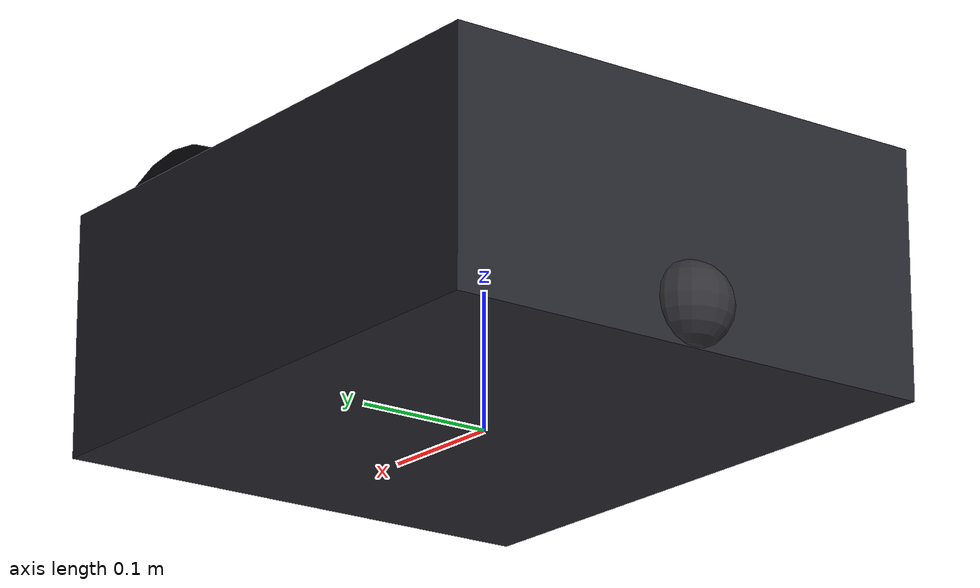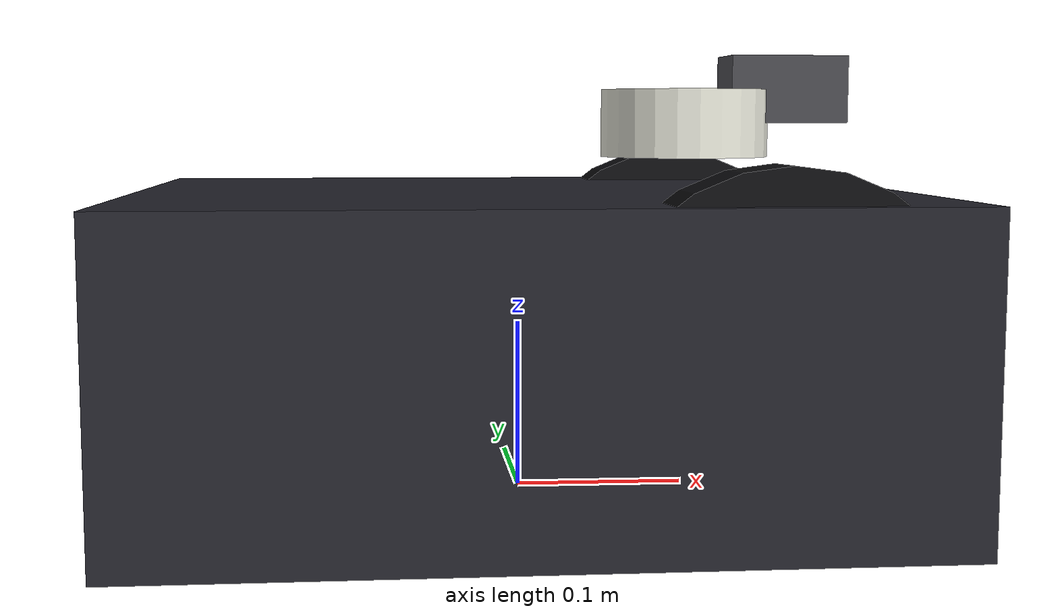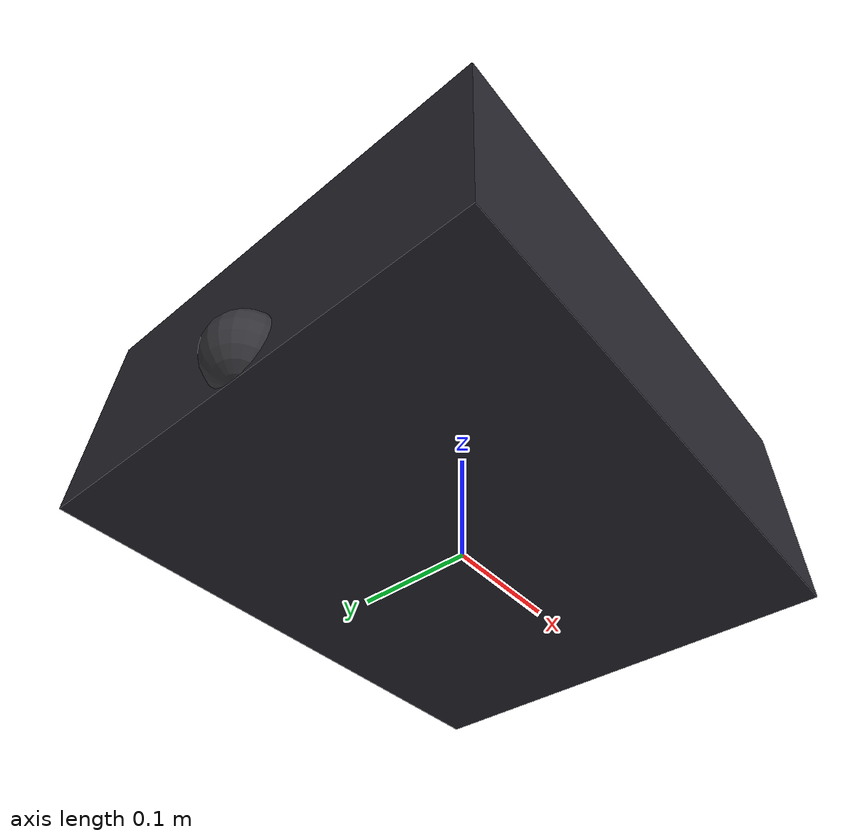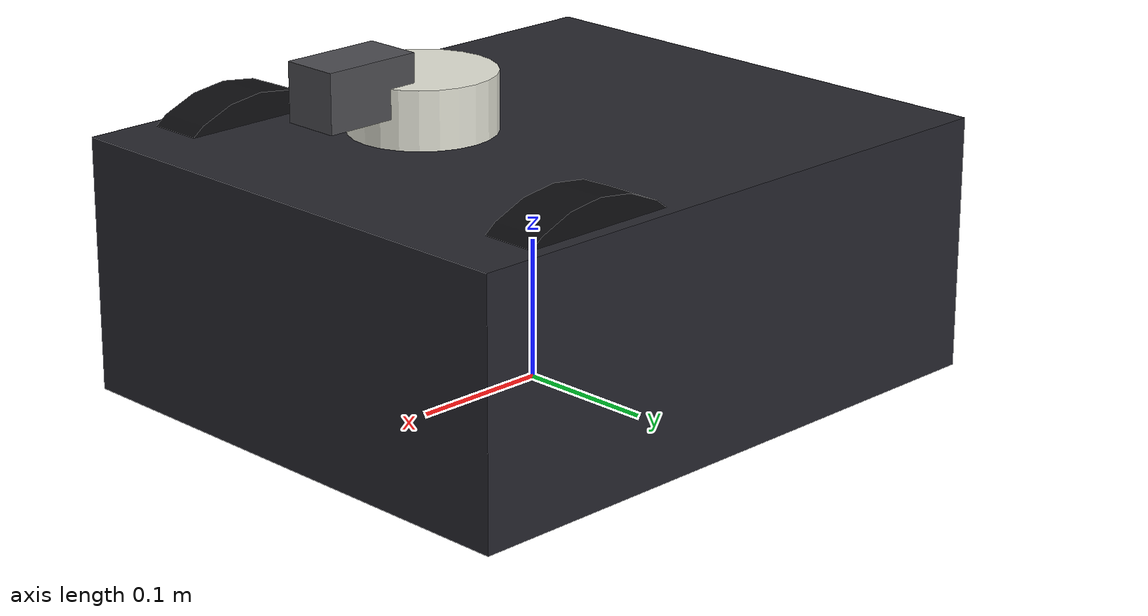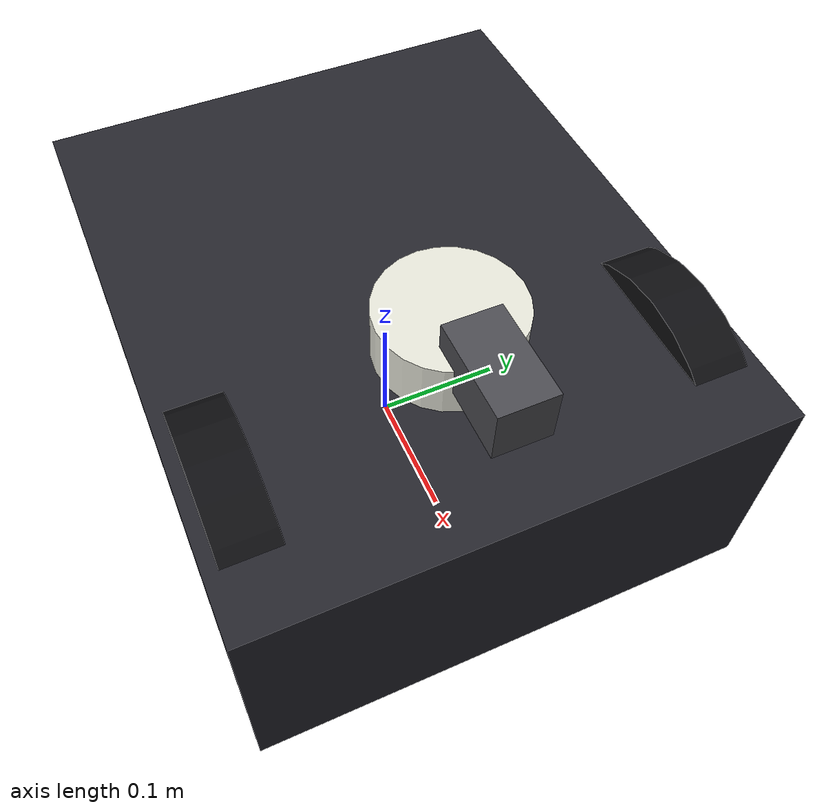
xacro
<?xml version="1.0"?>
<robot xmlns:xacro="http://www.ros.org/wiki/xacro" name="autonomous_robot">

  <xacro:include filename="$(find robot_description)/urdf/properties.xacro" />
  <xacro:include filename="$(find robot_description)/urdf/base.xacro" />
  <xacro:include filename="$(find robot_description)/urdf/sensors.xacro" />
  <xacro:include filename="$(find robot_description)/urdf/gazebo.xacro" />

  <xacro:autonomous_robot />
  <xacro:autonomous_robot_gazebo />

</robot>

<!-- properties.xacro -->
<robot xmlns:xacro="http://www.ros.org/wiki/xacro">

  <xacro:property name="base_length" value="0.45" />
  <xacro:property name="base_width" value="0.38" />
  <xacro:property name="base_height" value="0.18" />
  <xacro:property name="base_mass" value="11.0" />

  <xacro:property name="wheel_radius" value="0.10" />
  <xacro:property name="wheel_width" value="0.04" />
  <xacro:property name="wheel_mass" value="0.6" />
  <xacro:property name="wheel_separation" value="0.32" />

  <xacro:property name="caster_radius" value="0.03" />
  <xacro:property name="caster_mass" value="0.15" />

  <xacro:property name="laser_mass" value="0.35" />
  <xacro:property name="camera_mass" value="0.25" />
  <xacro:property name="imu_mass" value="0.05" />

  <!--
    Sensor mounting heights above the base top surface.
    laser_link z is measured from base_link origin (base top at +base_height/2).
  -->
  <xacro:property name="laser_height" value="0.22" />
  <xacro:property name="camera_height" value="0.24" />
  <xacro:property name="imu_height" value="0.10" />

  <xacro:property name="max_linear_velocity" value="1.2" />
  <xacro:property name="max_angular_velocity" value="1.5" />
  <xacro:property name="max_linear_acceleration" value="1.0" />
  <xacro:property name="max_angular_acceleration" value="2.0" />

</robot>

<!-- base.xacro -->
<robot xmlns:xacro="http://www.ros.org/wiki/xacro">

  <xacro:macro name="autonomous_robot">

    <link name="base_link">
      <inertial>
        <origin xyz="0.0 0.0 ${base_height/2}" rpy="0 0 0" />
        <mass value="${base_mass}" />
        <inertia ixx="0.12" ixy="0.0" ixz="0.0" iyy="0.12" iyz="0.0" izz="0.18" />
      </inertial>
      <visual>
        <origin xyz="0 0 ${base_height/2}" rpy="0 0 0" />
        <geometry>
          <box size="${base_length} ${base_width} ${base_height}" />
        </geometry>
        <material name="base_material">
          <color rgba="0.15 0.15 0.18 1.0" />
        </material>
      </visual>
      <collision>
        <origin xyz="0 0 ${base_height/2}" rpy="0 0 0" />
        <geometry>
          <box size="${base_length} ${base_width} ${base_height}" />
        </geometry>
      </collision>
    </link>

    <link name="left_wheel_link">
      <inertial>
        <origin xyz="0 0 0" rpy="0 0 0" />
        <mass value="${wheel_mass}" />
        <inertia ixx="0.0012" ixy="0.0" ixz="0.0" iyy="0.0006" iyz="0.0" izz="0.0012" />
      </inertial>
      <visual>
        <origin xyz="0 0 0" rpy="${pi/2} 0 0" />
        <geometry>
          <cylinder radius="${wheel_radius}" length="${wheel_width}" />
        </geometry>
        <material name="wheel_material">
          <color rgba="0.06 0.06 0.07 1.0" />
        </material>
      </visual>
      <collision>
        <origin xyz="0 0 0" rpy="${pi/2} 0 0" />
        <geometry>
          <cylinder radius="${wheel_radius}" length="${wheel_width}" />
        </geometry>
      </collision>
    </link>

    <joint name="left_wheel_joint" type="continuous">
      <parent link="base_link" />
      <child link="left_wheel_link" />
      <origin xyz="0.12 ${wheel_separation/2} ${wheel_radius}" rpy="0 0 0" />
      <axis xyz="0 1 0" />
      <limit effort="100" velocity="${max_angular_velocity / wheel_radius}" />
      <dynamics damping="0.5" friction="0.1" />
    </joint>

    <link name="right_wheel_link">
      <inertial>
        <origin xyz="0 0 0" rpy="0 0 0" />
        <mass value="${wheel_mass}" />
        <inertia ixx="0.0012" ixy="0.0" ixz="0.0" iyy="0.0006" iyz="0.0" izz="0.0012" />
      </inertial>
      <visual>
        <origin xyz="0 0 0" rpy="${pi/2} 0 0" />
        <geometry>
          <cylinder radius="${wheel_radius}" length="${wheel_width}" />
        </geometry>
        <material name="wheel_material">
          <color rgba="0.06 0.06 0.07 1.0" />
        </material>
      </visual>
      <collision>
        <origin xyz="0 0 0" rpy="${pi/2} 0 0" />
        <geometry>
          <cylinder radius="${wheel_radius}" length="${wheel_width}" />
        </geometry>
      </collision>
    </link>

    <joint name="right_wheel_joint" type="continuous">
      <parent link="base_link" />
      <child link="right_wheel_link" />
      <origin xyz="0.12 -${wheel_separation/2} ${wheel_radius}" rpy="0 0 0" />
      <axis xyz="0 1 0" />
      <limit effort="100" velocity="${max_angular_velocity / wheel_radius}" />
      <dynamics damping="0.5" friction="0.1" />
    </joint>

    <link name="caster_link">
      <inertial>
        <origin xyz="0 0 0" rpy="0 0 0" />
        <mass value="${caster_mass}" />
        <inertia ixx="0.00005" ixy="0.0" ixz="0.0" iyy="0.00005" iyz="0.0" izz="0.0001" />
      </inertial>
      <visual>
        <origin xyz="0 0 0" rpy="0 0 0" />
        <geometry>
          <sphere radius="${caster_radius}" />
        </geometry>
        <material name="caster_material">
          <color rgba="0.2 0.2 0.22 1.0" />
        </material>
      </visual>
      <collision>
        <origin xyz="0 0 0" rpy="0 0 0" />
        <geometry>
          <sphere radius="${caster_radius}" />
        </geometry>
      </collision>
    </link>

    <joint name="caster_joint" type="fixed">
      <parent link="base_link" />
      <child link="caster_link" />
      <origin xyz="-0.22 0 ${caster_radius}" rpy="0 0 0" />
    </joint>

  </xacro:macro>

</robot>

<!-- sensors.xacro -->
<robot xmlns:xacro="http://www.ros.org/wiki/xacro">

  <link name="laser_link">
    <inertial>
      <origin xyz="0 0 0" rpy="0 0 0" />
      <mass value="${laser_mass}" />
      <inertia ixx="0.001" ixy="0.0" ixz="0.0" iyy="0.001" iyz="0.0" izz="0.001" />
    </inertial>
    <visual>
      <origin xyz="0 0 0" rpy="0 0 0" />
      <geometry>
        <cylinder radius="0.05" length="0.04" />
      </geometry>
      <material name="laser_material">
        <color rgba="0.9 0.9 0.85 1.0" />
      </material>
    </visual>
    <collision>
      <origin xyz="0 0 0" rpy="0 0 0" />
      <geometry>
        <cylinder radius="0.05" length="0.04" />
      </geometry>
    </collision>
  </link>

  <joint name="laser_joint" type="fixed">
    <parent link="base_link" />
    <child link="laser_link" />
    <origin xyz="0.10 0 ${laser_height}" rpy="0 0 0" />
  </joint>

  <link name="camera_link">
    <inertial>
      <origin xyz="0 0 0" rpy="0 0 0" />
      <mass value="${camera_mass}" />
      <inertia ixx="0.0005" ixy="0.0" ixz="0.0" iyy="0.0005" iyz="0.0" izz="0.0005" />
    </inertial>
    <visual>
      <origin xyz="0 0 0" rpy="0 0 0" />
      <geometry>
        <box size="0.07 0.04 0.04" />
      </geometry>
      <material name="camera_material">
        <color rgba="0.3 0.3 0.32 1.0" />
      </material>
    </visual>
    <collision>
      <origin xyz="0 0 0" rpy="0 0 0" />
      <geometry>
        <box size="0.07 0.04 0.04" />
      </geometry>
    </collision>
  </link>

  <joint name="camera_joint" type="fixed">
    <parent link="base_link" />
    <child link="camera_link" />
    <origin xyz="0.16 0 ${camera_height}" rpy="0 0 0" />
  </joint>

  <!--
    Depth camera optical frame (ROS_REP-103):
    X points forward (out of the lens) - the camera_link frame already
    follows REP-103, so the optical frame is identical here.
  -->
  <link name="camera_depth_frame" />
  <joint name="camera_depth_joint" type="fixed">
    <parent link="camera_link" />
    <child link="camera_depth_frame" />
    <origin xyz="0.03 0 0.01" rpy="0 0 0" />
  </joint>

  <link name="camera_depth_optical_frame" />
  <joint name="camera_depth_optical_joint" type="fixed">
    <parent link="camera_depth_frame" />
    <child link="camera_depth_optical_frame" />
    <origin xyz="0 0 0" rpy="${-pi/2} 0 ${-pi/2}" />
  </joint>

  <link name="imu_link">
    <inertial>
      <origin xyz="0 0 0" rpy="0 0 0" />
      <mass value="${imu_mass}" />
      <inertia ixx="0.00001" ixy="0.0" ixz="0.0" iyy="0.00001" iyz="0.0" izz="0.00001" />
    </inertial>
    <visual>
      <origin xyz="0 0 0" rpy="0 0 0" />
      <geometry>
        <box size="0.04 0.03 0.015" />
      </geometry>
      <material name="imu_material">
        <color rgba="0.5 0.1 0.1 1.0" />
      </material>
    </visual>
  </link>

  <joint name="imu_joint" type="fixed">
    <parent link="base_link" />
    <child link="imu_link" />
    <origin xyz="-0.05 0 ${imu_height}" rpy="0 0 0" />
  </joint>

</robot>
